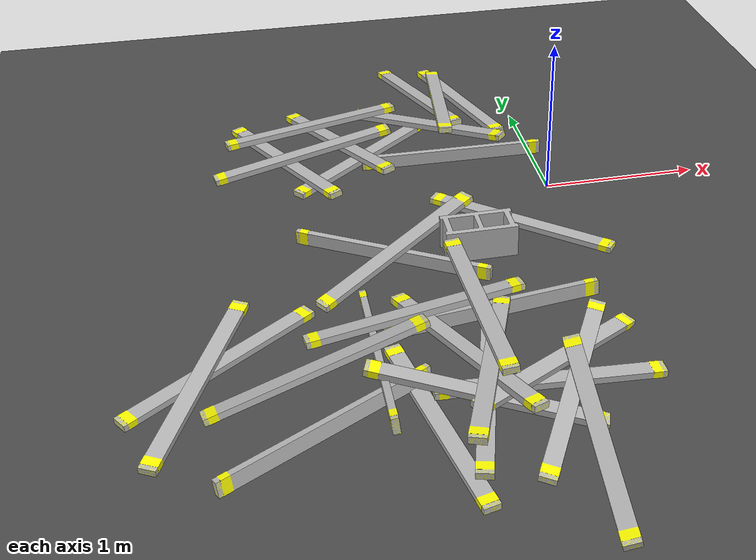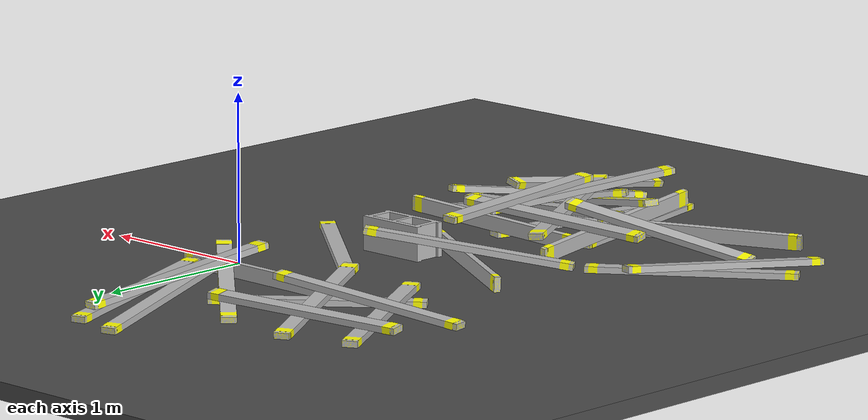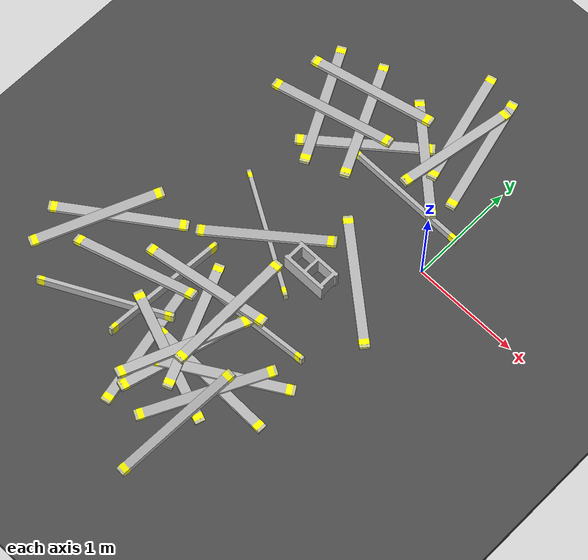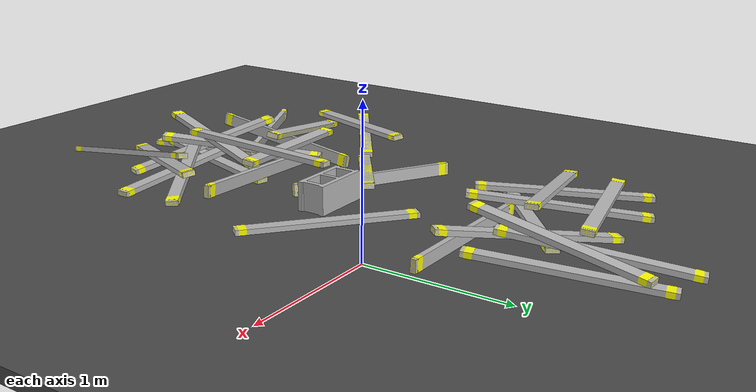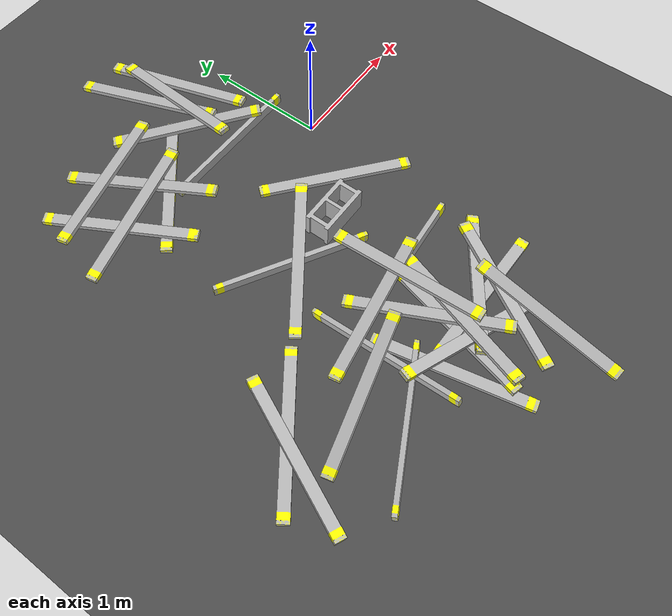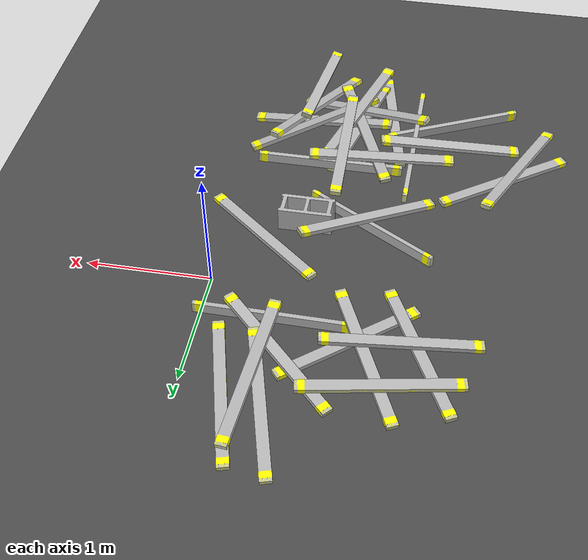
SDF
<sdf version="1.6">
 <world name="default">
  <model name="ground_plane">
   <static>1</static>
   <link name="link">
    <collision name="collision">
     <geometry><plane><normal>0 0 1</normal><size>100 100</size></plane></geometry>
     <surface><friction><ode><mu>100</mu><mu2>50</mu2></ode></friction></surface>
    </collision>
    <visual name="visual">
     <cast_shadows>0</cast_shadows>
     <geometry><plane><normal>0 0 1</normal><size>100 100</size></plane></geometry>
     <material>
      <script><uri>file://media/materials/scripts/gazebo.material</uri><name>Gazebo/Grey</name></script>
     </material>
    </visual>
   </link>
  </model>
  <model name="asphalt_plane">
   <static>1</static>
   <link name="link">
    <collision name="collision"><geometry><box><size>20 20 0.1</size></box></geometry></collision>
    <visual name="visual">
     <cast_shadows>0</cast_shadows>
     <geometry><box><size>20 20 0.1</size></box></geometry>
     <material>
      <script>
       <uri>model://asphalt_plane/materials/scripts</uri>
       <uri>model://asphalt_plane/materials/textures</uri>
       <name>vrc/asphalt</name>
      </script>
     </material>
    </visual>
   </link>
   <pose>0.013797 -0.037077 0 0 -0 0</pose>
  </model>
  <model name="lumber_2x4x48_clone">
   <link name="link">
    <inertial>
     <mass>1.4111</mass>
     <inertia><ixx>0.0011</ixx><ixy>0</ixy><ixz>0</ixz><iyy>0.1771</iyy><iyz>0</iyz><izz>0.1763</izz></inertia>
    </inertial>
    <collision name="collision">
     <geometry><box><size>1.2192 0.038 0.0888</size></box></geometry>
     <surface>
      <bounce><restitution_coefficient>0.01</restitution_coefficient><threshold>5</threshold></bounce>
      <friction><ode><mu>5</mu><mu2>5</mu2></ode></friction>
      <contact>
       <ode>
        <soft_cfm>0.001</soft_cfm>
        <kp>10000</kp>
        <kd>1000</kd>
        <max_vel>0.01</max_vel>
        <min_depth>0.001</min_depth>
       </ode>
      </contact>
     </surface>
    </collision>
    <visual name="visual">
     <geometry><mesh><uri>model://drc_practice_2x4/meshes/2x4x48.dae</uri><scale>1 1 1</scale></mesh></geometry>
    </visual>
   </link>
   <pose>-0.564844 0.385087 0.092446 -0.014603 -0.000898 -0.013555</pose>
  </model>
  <model name="lumber_2x4x48_clone_3_clone">
   <link name="link">
    <inertial>
     <mass>1.4111</mass>
     <inertia><ixx>0.0011</ixx><ixy>0</ixy><ixz>0</ixz><iyy>0.1771</iyy><iyz>0</iyz><izz>0.1763</izz></inertia>
    </inertial>
    <collision name="collision">
     <geometry><box><size>1.2192 0.038 0.0888</size></box></geometry>
     <surface>
      <bounce><restitution_coefficient>0.01</restitution_coefficient><threshold>5</threshold></bounce>
      <friction><ode><mu>5</mu><mu2>5</mu2></ode></friction>
      <contact>
       <ode>
        <soft_cfm>0.001</soft_cfm>
        <kp>10000</kp>
        <kd>1000</kd>
        <max_vel>0.01</max_vel>
        <min_depth>0.001</min_depth>
       </ode>
      </contact>
     </surface>
    </collision>
    <visual name="visual">
     <geometry><mesh><uri>model://drc_practice_2x4/meshes/2x4x48.dae</uri><scale>1 1 1</scale></mesh></geometry>
    </visual>
   </link>
   <pose>-0.674077 0.751411 0.144054 1.58243 -0.126257 -0.74308</pose>
  </model>
  <model name="lumber_2x4x48_clone_3_clone_0_clone_1">
   <link name="link">
    <inertial>
     <mass>1.4111</mass>
     <inertia><ixx>0.0011</ixx><ixy>0</ixy><ixz>0</ixz><iyy>0.1771</iyy><iyz>0</iyz><izz>0.1763</izz></inertia>
    </inertial>
    <collision name="collision">
     <geometry><box><size>1.2192 0.038 0.0888</size></box></geometry>
     <surface>
      <bounce><restitution_coefficient>0.01</restitution_coefficient><threshold>5</threshold></bounce>
      <friction><ode><mu>5</mu><mu2>5</mu2></ode></friction>
      <contact>
       <ode>
        <soft_cfm>0.001</soft_cfm>
        <kp>10000</kp>
        <kd>1000</kd>
        <max_vel>0.01</max_vel>
        <min_depth>0.001</min_depth>
       </ode>
      </contact>
     </surface>
    </collision>
    <visual name="visual">
     <geometry><mesh><uri>model://drc_practice_2x4/meshes/2x4x48.dae</uri><scale>1 1 1</scale></mesh></geometry>
    </visual>
   </link>
   <pose>-0.536621 0.990716 0.198915 1.59843 0.135989 1.45668</pose>
  </model>
  <model name="lumber_2x4x48_clone_1_clone">
   <link name="link">
    <inertial>
     <mass>1.4111</mass>
     <inertia><ixx>0.0011</ixx><ixy>0</ixy><ixz>0</ixz><iyy>0.1771</iyy><iyz>0</iyz><izz>0.1763</izz></inertia>
    </inertial>
    <collision name="collision">
     <geometry><box><size>1.2192 0.038 0.0888</size></box></geometry>
     <surface>
      <bounce><restitution_coefficient>0.01</restitution_coefficient><threshold>5</threshold></bounce>
      <friction><ode><mu>5</mu><mu2>5</mu2></ode></friction>
      <contact>
       <ode>
        <soft_cfm>0.001</soft_cfm>
        <kp>10000</kp>
        <kd>1000</kd>
        <max_vel>0.01</max_vel>
        <min_depth>0.001</min_depth>
       </ode>
      </contact>
     </surface>
    </collision>
    <visual name="visual">
     <geometry><mesh><uri>model://drc_practice_2x4/meshes/2x4x48.dae</uri><scale>1 1 1</scale></mesh></geometry>
    </visual>
   </link>
   <pose>-0.551399 -1.96521 0.104119 -1.58274 0.059663 -0.000419</pose>
  </model>
  <model name="lumber_2x4x48_clone_3_clone_0_clone_0_clone">
   <link name="link">
    <inertial>
     <mass>1.4111</mass>
     <inertia><ixx>0.0011</ixx><ixy>0</ixy><ixz>0</ixz><iyy>0.1771</iyy><iyz>0</iyz><izz>0.1763</izz></inertia>
    </inertial>
    <collision name="collision">
     <geometry><box><size>1.2192 0.038 0.0888</size></box></geometry>
     <surface>
      <bounce><restitution_coefficient>0.01</restitution_coefficient><threshold>5</threshold></bounce>
      <friction><ode><mu>5</mu><mu2>5</mu2></ode></friction>
      <contact>
       <ode>
        <soft_cfm>0.001</soft_cfm>
        <kp>10000</kp>
        <kd>1000</kd>
        <max_vel>0.01</max_vel>
        <min_depth>0.001</min_depth>
       </ode>
      </contact>
     </surface>
    </collision>
    <visual name="visual">
     <geometry><mesh><uri>model://drc_practice_2x4/meshes/2x4x48.dae</uri><scale>1 1 1</scale></mesh></geometry>
    </visual>
   </link>
   <pose>-0.491095 -1.8733 0.143896 1.68395 0.124145 0.588669</pose>
  </model>
  <model name="lumber_2x4x48_clone_3_clone_0_clone_0_clone_0_clone">
   <link name="link">
    <inertial>
     <mass>1.4111</mass>
     <inertia><ixx>0.0011</ixx><ixy>0</ixy><ixz>0</ixz><iyy>0.1771</iyy><iyz>0</iyz><izz>0.1763</izz></inertia>
    </inertial>
    <collision name="collision">
     <geometry><box><size>1.2192 0.038 0.0888</size></box></geometry>
     <surface>
      <bounce><restitution_coefficient>0.01</restitution_coefficient><threshold>5</threshold></bounce>
      <friction><ode><mu>5</mu><mu2>5</mu2></ode></friction>
      <contact>
       <ode>
        <soft_cfm>0.001</soft_cfm>
        <kp>10000</kp>
        <kd>1000</kd>
        <max_vel>0.01</max_vel>
        <min_depth>0.001</min_depth>
       </ode>
      </contact>
     </surface>
    </collision>
    <visual name="visual">
     <geometry><mesh><uri>model://drc_practice_2x4/meshes/2x4x48.dae</uri><scale>1 1 1</scale></mesh></geometry>
    </visual>
   </link>
   <pose>-0.9154 -2.08029 0.176265 1.59063 -0.182362 2.80756</pose>
  </model>
  <model name="lumber_2x4x48_clone_0_clone">
   <link name="link">
    <inertial>
     <mass>1.4111</mass>
     <inertia><ixx>0.0011</ixx><ixy>0</ixy><ixz>0</ixz><iyy>0.1771</iyy><iyz>0</iyz><izz>0.1763</izz></inertia>
    </inertial>
    <collision name="collision">
     <geometry><box><size>1.2192 0.038 0.0888</size></box></geometry>
     <surface>
      <bounce><restitution_coefficient>0.01</restitution_coefficient><threshold>5</threshold></bounce>
      <friction><ode><mu>5</mu><mu2>5</mu2></ode></friction>
      <contact>
       <ode>
        <soft_cfm>0.001</soft_cfm>
        <kp>10000</kp>
        <kd>1000</kd>
        <max_vel>0.01</max_vel>
        <min_depth>0.001</min_depth>
       </ode>
      </contact>
     </surface>
    </collision>
    <visual name="visual">
     <geometry><mesh><uri>model://drc_practice_2x4/meshes/2x4x48.dae</uri><scale>1 1 1</scale></mesh></geometry>
    </visual>
   </link>
   <pose>-0.710457 -1.3682 0.129535 -0.070083 -0.054685 0.065202</pose>
  </model>
  <model name="lumber_2x4x48_clone_3_clone_0_clone_1_clone">
   <link name="link">
    <inertial>
     <mass>1.4111</mass>
     <inertia><ixx>0.0011</ixx><ixy>0</ixy><ixz>0</ixz><iyy>0.1771</iyy><iyz>0</iyz><izz>0.1763</izz></inertia>
    </inertial>
    <collision name="collision">
     <geometry><box><size>1.2192 0.038 0.0888</size></box></geometry>
     <surface>
      <bounce><restitution_coefficient>0.01</restitution_coefficient><threshold>5</threshold></bounce>
      <friction><ode><mu>5</mu><mu2>5</mu2></ode></friction>
      <contact>
       <ode>
        <soft_cfm>0.001</soft_cfm>
        <kp>10000</kp>
        <kd>1000</kd>
        <max_vel>0.01</max_vel>
        <min_depth>0.001</min_depth>
       </ode>
      </contact>
     </surface>
    </collision>
    <visual name="visual">
     <geometry><mesh><uri>model://drc_practice_2x4/meshes/2x4x48.dae</uri><scale>1 1 1</scale></mesh></geometry>
    </visual>
   </link>
   <pose>-0.878822 -1.94492 0.085398 1.56353 0.03198 1.3131</pose>
  </model>
  <model name="lumber_2x4x48_clone_3_clone_0_clone_1_clone_clone_1">
   <link name="link">
    <inertial>
     <mass>1.4111</mass>
     <inertia><ixx>0.0011</ixx><ixy>0</ixy><ixz>0</ixz><iyy>0.1771</iyy><iyz>0</iyz><izz>0.1763</izz></inertia>
    </inertial>
    <collision name="collision">
     <geometry><box><size>1.2192 0.038 0.0888</size></box></geometry>
     <surface>
      <bounce><restitution_coefficient>0.01</restitution_coefficient><threshold>5</threshold></bounce>
      <friction><ode><mu>5</mu><mu2>5</mu2></ode></friction>
      <contact>
       <ode>
        <soft_cfm>0.001</soft_cfm>
        <kp>10000</kp>
        <kd>1000</kd>
        <max_vel>0.01</max_vel>
        <min_depth>0.001</min_depth>
       </ode>
      </contact>
     </surface>
    </collision>
    <visual name="visual">
     <geometry><mesh><uri>model://drc_practice_2x4/meshes/2x4x48.dae</uri><scale>1 1 1</scale></mesh></geometry>
    </visual>
   </link>
   <pose>-1.38732 -1.67393 0.170197 3.0514 0.126034 1.55885</pose>
  </model>
  <model name="lumber_2x4x48_clone_3_clone_0_clone_1_clone_clone_2">
   <link name="link">
    <inertial>
     <mass>1.4111</mass>
     <inertia><ixx>0.0011</ixx><ixy>0</ixy><ixz>0</ixz><iyy>0.1771</iyy><iyz>0</iyz><izz>0.1763</izz></inertia>
    </inertial>
    <collision name="collision">
     <geometry><box><size>1.2192 0.038 0.0888</size></box></geometry>
     <surface>
      <bounce><restitution_coefficient>0.01</restitution_coefficient><threshold>5</threshold></bounce>
      <friction><ode><mu>5</mu><mu2>5</mu2></ode></friction>
      <contact>
       <ode>
        <soft_cfm>0.001</soft_cfm>
        <kp>10000</kp>
        <kd>1000</kd>
        <max_vel>0.01</max_vel>
        <min_depth>0.001</min_depth>
       </ode>
      </contact>
     </surface>
    </collision>
    <visual name="visual">
     <geometry><mesh><uri>model://drc_practice_2x4/meshes/2x4x48.dae</uri><scale>1 1 1</scale></mesh></geometry>
    </visual>
   </link>
   <pose>-1.69019 -2.06852 0.107609 -0.127922 -0.022376 0.469954</pose>
  </model>
  <model name="lumber_2x4x48_clone_3_clone_0_clone_clone">
   <link name="link">
    <inertial>
     <mass>1.4111</mass>
     <inertia><ixx>0.0011</ixx><ixy>0</ixy><ixz>0</ixz><iyy>0.1771</iyy><iyz>0</iyz><izz>0.1763</izz></inertia>
    </inertial>
    <collision name="collision">
     <geometry><box><size>1.2192 0.038 0.0888</size></box></geometry>
     <surface>
      <bounce><restitution_coefficient>0.01</restitution_coefficient><threshold>5</threshold></bounce>
      <friction><ode><mu>5</mu><mu2>5</mu2></ode></friction>
      <contact>
       <ode>
        <soft_cfm>0.001</soft_cfm>
        <kp>10000</kp>
        <kd>1000</kd>
        <max_vel>0.01</max_vel>
        <min_depth>0.001</min_depth>
       </ode>
      </contact>
     </surface>
    </collision>
    <visual name="visual">
     <geometry><mesh><uri>model://drc_practice_2x4/meshes/2x4x48.dae</uri><scale>1 1 1</scale></mesh></geometry>
    </visual>
   </link>
   <pose>-2.18032 -1.45176 0.067309 1.57859 -0.000151 0.618251</pose>
  </model>
  <model name="lumber_2x4x48_clone_3_clone_0_clone_1_clone_clone_4">
   <link name="link">
    <inertial>
     <mass>1.4111</mass>
     <inertia><ixx>0.0011</ixx><ixy>0</ixy><ixz>0</ixz><iyy>0.1771</iyy><iyz>0</iyz><izz>0.1763</izz></inertia>
    </inertial>
    <collision name="collision">
     <geometry><box><size>1.2192 0.038 0.0888</size></box></geometry>
     <surface>
      <bounce><restitution_coefficient>0.01</restitution_coefficient><threshold>5</threshold></bounce>
      <friction><ode><mu>5</mu><mu2>5</mu2></ode></friction>
      <contact>
       <ode>
        <soft_cfm>0.001</soft_cfm>
        <kp>10000</kp>
        <kd>1000</kd>
        <max_vel>0.01</max_vel>
        <min_depth>0.001</min_depth>
       </ode>
      </contact>
     </surface>
    </collision>
    <visual name="visual">
     <geometry><mesh><uri>model://drc_practice_2x4/meshes/2x4x48.dae</uri><scale>1 1 1</scale></mesh></geometry>
    </visual>
   </link>
   <pose>-1.15883 0.514226 0.067235 1.56227 -0.000503 0.690635</pose>
  </model>
  <model name="lumber_2x4x48_clone_3_clone_0_clone_clone_0_clone_0">
   <link name="link">
    <inertial>
     <mass>1.4111</mass>
     <inertia><ixx>0.0011</ixx><ixy>0</ixy><ixz>0</ixz><iyy>0.1771</iyy><iyz>0</iyz><izz>0.1763</izz></inertia>
    </inertial>
    <collision name="collision">
     <geometry><box><size>1.2192 0.038 0.0888</size></box></geometry>
     <surface>
      <bounce><restitution_coefficient>0.01</restitution_coefficient><threshold>5</threshold></bounce>
      <friction><ode><mu>5</mu><mu2>5</mu2></ode></friction>
      <contact>
       <ode>
        <soft_cfm>0.001</soft_cfm>
        <kp>10000</kp>
        <kd>1000</kd>
        <max_vel>0.01</max_vel>
        <min_depth>0.001</min_depth>
       </ode>
      </contact>
     </surface>
    </collision>
    <visual name="visual">
     <geometry><mesh><uri>model://drc_practice_2x4/meshes/2x4x48.dae</uri><scale>1 1 1</scale></mesh></geometry>
    </visual>
   </link>
   <pose>-0.9562 -1.74736 0.203667 -1.65018 -0.07961 -1.14269</pose>
  </model>
  <model name="lumber_2x4x48_clone_3_clone_0_clone_clone_0_clone_0_clone_0">
   <link name="link">
    <inertial>
     <mass>1.4111</mass>
     <inertia><ixx>0.0011</ixx><ixy>0</ixy><ixz>0</ixz><iyy>0.1771</iyy><iyz>0</iyz><izz>0.1763</izz></inertia>
    </inertial>
    <collision name="collision">
     <geometry><box><size>1.2192 0.038 0.0888</size></box></geometry>
     <surface>
      <bounce><restitution_coefficient>0.01</restitution_coefficient><threshold>5</threshold></bounce>
      <friction><ode><mu>5</mu><mu2>5</mu2></ode></friction>
      <contact>
       <ode>
        <soft_cfm>0.001</soft_cfm>
        <kp>10000</kp>
        <kd>1000</kd>
        <max_vel>0.01</max_vel>
        <min_depth>0.001</min_depth>
       </ode>
      </contact>
     </surface>
    </collision>
    <visual name="visual">
     <geometry><mesh><uri>model://drc_practice_2x4/meshes/2x4x48.dae</uri><scale>1 1 1</scale></mesh></geometry>
    </visual>
   </link>
   <pose>-0.814449 -1.47296 0.278991 -1.5112 -0.044955 -1.54025</pose>
  </model>
  <model name="lumber_2x4x48_clone_3_clone_0_clone_clone_0_clone_0_clone_2">
   <link name="link">
    <inertial>
     <mass>1.4111</mass>
     <inertia><ixx>0.0011</ixx><ixy>0</ixy><ixz>0</ixz><iyy>0.1771</iyy><iyz>0</iyz><izz>0.1763</izz></inertia>
    </inertial>
    <collision name="collision">
     <geometry><box><size>1.2192 0.038 0.0888</size></box></geometry>
     <surface>
      <bounce><restitution_coefficient>0.01</restitution_coefficient><threshold>5</threshold></bounce>
      <friction><ode><mu>5</mu><mu2>5</mu2></ode></friction>
      <contact>
       <ode>
        <soft_cfm>0.001</soft_cfm>
        <kp>10000</kp>
        <kd>1000</kd>
        <max_vel>0.01</max_vel>
        <min_depth>0.001</min_depth>
       </ode>
      </contact>
     </surface>
    </collision>
    <visual name="visual">
     <geometry><mesh><uri>model://drc_practice_2x4/meshes/2x4x48.dae</uri><scale>1 1 1</scale></mesh></geometry>
    </visual>
   </link>
   <pose>-1.16407 -2.10287 0.065749 -1.54798 -0.000855 -1.35803</pose>
  </model>
  <model name="lumber_2x4x48_clone_3_clone_0_clone_clone_0_clone_0_clone_3">
   <link name="link">
    <inertial>
     <mass>1.4111</mass>
     <inertia><ixx>0.0011</ixx><ixy>0</ixy><ixz>0</ixz><iyy>0.1771</iyy><iyz>0</iyz><izz>0.1763</izz></inertia>
    </inertial>
    <collision name="collision">
     <geometry><box><size>1.2192 0.038 0.0888</size></box></geometry>
     <surface>
      <bounce><restitution_coefficient>0.01</restitution_coefficient><threshold>5</threshold></bounce>
      <friction><ode><mu>5</mu><mu2>5</mu2></ode></friction>
      <contact>
       <ode>
        <soft_cfm>0.001</soft_cfm>
        <kp>10000</kp>
        <kd>1000</kd>
        <max_vel>0.01</max_vel>
        <min_depth>0.001</min_depth>
       </ode>
      </contact>
     </surface>
    </collision>
    <visual name="visual">
     <geometry><mesh><uri>model://drc_practice_2x4/meshes/2x4x48.dae</uri><scale>1 1 1</scale></mesh></geometry>
    </visual>
   </link>
   <pose>-0.357372 1.13559 0.106775 -1.58406 -0.063668 -1.31004</pose>
  </model>
  <model name="lumber_2x4x48_clone_3_clone_0_clone_clone_0_clone_0_clone_6">
   <link name="link">
    <inertial>
     <mass>1.4111</mass>
     <inertia><ixx>0.0011</ixx><ixy>0</ixy><ixz>0</ixz><iyy>0.1771</iyy><iyz>0</iyz><izz>0.1763</izz></inertia>
    </inertial>
    <collision name="collision">
     <geometry><box><size>1.2192 0.038 0.0888</size></box></geometry>
     <surface>
      <bounce><restitution_coefficient>0.01</restitution_coefficient><threshold>5</threshold></bounce>
      <friction><ode><mu>5</mu><mu2>5</mu2></ode></friction>
      <contact>
       <ode>
        <soft_cfm>0.001</soft_cfm>
        <kp>10000</kp>
        <kd>1000</kd>
        <max_vel>0.01</max_vel>
        <min_depth>0.001</min_depth>
       </ode>
      </contact>
     </surface>
    </collision>
    <visual name="visual">
     <geometry><mesh><uri>model://drc_practice_2x4/meshes/2x4x48.dae</uri><scale>1 1 1</scale></mesh></geometry>
    </visual>
   </link>
   <pose>-1.68194 0.538962 0.0903 -1.56155 -0.037253 -1.08006</pose>
  </model>
  <model name="lumber_2x4x48_clone_3_clone_0_clone_clone_0_clone_0_clone_7">
   <link name="link">
    <inertial>
     <mass>1.4111</mass>
     <inertia><ixx>0.0011</ixx><ixy>0</ixy><ixz>0</ixz><iyy>0.1771</iyy><iyz>0</iyz><izz>0.1763</izz></inertia>
    </inertial>
    <collision name="collision">
     <geometry><box><size>1.2192 0.038 0.0888</size></box></geometry>
     <surface>
      <bounce><restitution_coefficient>0.01</restitution_coefficient><threshold>5</threshold></bounce>
      <friction><ode><mu>5</mu><mu2>5</mu2></ode></friction>
      <contact>
       <ode>
        <soft_cfm>0.001</soft_cfm>
        <kp>10000</kp>
        <kd>1000</kd>
        <max_vel>0.01</max_vel>
        <min_depth>0.001</min_depth>
       </ode>
      </contact>
     </surface>
    </collision>
    <visual name="visual">
     <geometry><mesh><uri>model://drc_practice_2x4/meshes/2x4x48.dae</uri><scale>1 1 1</scale></mesh></geometry>
    </visual>
   </link>
   <pose>-1.3056 0.664728 0.124248 -1.55753 -0.093838 -1.10502</pose>
  </model>
  <model name="lumber_2x4x48_clone_3_clone_0_clone_clone_0_clone_0_clone_0_clone">
   <link name="link">
    <inertial>
     <mass>1.4111</mass>
     <inertia><ixx>0.0011</ixx><ixy>0</ixy><ixz>0</ixz><iyy>0.1771</iyy><iyz>0</iyz><izz>0.1763</izz></inertia>
    </inertial>
    <collision name="collision">
     <geometry><box><size>1.2192 0.038 0.0888</size></box></geometry>
     <surface>
      <bounce><restitution_coefficient>0.01</restitution_coefficient><threshold>5</threshold></bounce>
      <friction><ode><mu>5</mu><mu2>5</mu2></ode></friction>
      <contact>
       <ode>
        <soft_cfm>0.001</soft_cfm>
        <kp>10000</kp>
        <kd>1000</kd>
        <max_vel>0.01</max_vel>
        <min_depth>0.001</min_depth>
       </ode>
      </contact>
     </surface>
    </collision>
    <visual name="visual">
     <geometry><mesh><uri>model://drc_practice_2x4/meshes/2x4x48.dae</uri><scale>1 1 1</scale></mesh></geometry>
    </visual>
   </link>
   <pose>-1.15275 -0.691676 0.093036 0.045143 -0.000124 -0.530444</pose>
  </model>
  <model name="lumber_2x4x48_clone_3_clone_0_clone_clone_0_clone_0_clone_9">
   <link name="link">
    <inertial>
     <mass>1.4111</mass>
     <inertia><ixx>0.0011</ixx><ixy>0</ixy><ixz>0</ixz><iyy>0.1771</iyy><iyz>0</iyz><izz>0.1763</izz></inertia>
    </inertial>
    <collision name="collision">
     <geometry><box><size>1.2192 0.038 0.0888</size></box></geometry>
     <surface>
      <bounce><restitution_coefficient>0.01</restitution_coefficient><threshold>5</threshold></bounce>
      <friction><ode><mu>5</mu><mu2>5</mu2></ode></friction>
      <contact>
       <ode>
        <soft_cfm>0.001</soft_cfm>
        <kp>10000</kp>
        <kd>1000</kd>
        <max_vel>0.01</max_vel>
        <min_depth>0.001</min_depth>
       </ode>
      </contact>
     </surface>
    </collision>
    <visual name="visual">
     <geometry><mesh><uri>model://drc_practice_2x4/meshes/2x4x48.dae</uri><scale>1 1 1</scale></mesh></geometry>
    </visual>
   </link>
   <pose>-0.650271 1.19758 0.13768 -1.58002 -0.11587 -1.29308</pose>
  </model>
  <model name="lumber_2x4x48_clone_3_clone_0_clone_clone_0_clone_0_clone_11_clone_0">
   <link name="link">
    <inertial>
     <mass>1.4111</mass>
     <inertia><ixx>0.0011</ixx><ixy>0</ixy><ixz>0</ixz><iyy>0.1771</iyy><iyz>0</iyz><izz>0.1763</izz></inertia>
    </inertial>
    <collision name="collision">
     <geometry><box><size>1.2192 0.038 0.0888</size></box></geometry>
     <surface>
      <bounce><restitution_coefficient>0.01</restitution_coefficient><threshold>5</threshold></bounce>
      <friction><ode><mu>5</mu><mu2>5</mu2></ode></friction>
      <contact>
       <ode>
        <soft_cfm>0.001</soft_cfm>
        <kp>10000</kp>
        <kd>1000</kd>
        <max_vel>0.01</max_vel>
        <min_depth>0.001</min_depth>
       </ode>
      </contact>
     </surface>
    </collision>
    <visual name="visual">
     <geometry><mesh><uri>model://drc_practice_2x4/meshes/2x4x48.dae</uri><scale>1 1 1</scale></mesh></geometry>
    </visual>
   </link>
   <pose>-0.864387 -1.9492 0.257824 1.57847 -0.102712 -1.91162</pose>
  </model>
  <model name="lumber_2x4x48_clone_3_clone_0_clone_clone_0_clone_0_clone_11_clone_3">
   <link name="link">
    <inertial>
     <mass>1.4111</mass>
     <inertia><ixx>0.0011</ixx><ixy>0</ixy><ixz>0</ixz><iyy>0.1771</iyy><iyz>0</iyz><izz>0.1763</izz></inertia>
    </inertial>
    <collision name="collision">
     <geometry><box><size>1.2192 0.038 0.0888</size></box></geometry>
     <surface>
      <bounce><restitution_coefficient>0.01</restitution_coefficient><threshold>5</threshold></bounce>
      <friction><ode><mu>5</mu><mu2>5</mu2></ode></friction>
      <contact>
       <ode>
        <soft_cfm>0.001</soft_cfm>
        <kp>10000</kp>
        <kd>1000</kd>
        <max_vel>0.01</max_vel>
        <min_depth>0.001</min_depth>
       </ode>
      </contact>
     </surface>
    </collision>
    <visual name="visual">
     <geometry><mesh><uri>model://drc_practice_2x4/meshes/2x4x48.dae</uri><scale>1 1 1</scale></mesh></geometry>
    </visual>
   </link>
   <pose>-0.459548 -2.4328 0.162297 -1.33539 0.139766 -1.64123</pose>
  </model>
  <model name="lumber_2x4x48_clone_3_clone_0_clone_clone_0_clone_0_clone_11_clone_4">
   <link name="link">
    <inertial>
     <mass>1.4111</mass>
     <inertia><ixx>0.0011</ixx><ixy>0</ixy><ixz>0</ixz><iyy>0.1771</iyy><iyz>0</iyz><izz>0.1763</izz></inertia>
    </inertial>
    <collision name="collision">
     <geometry><box><size>1.2192 0.038 0.0888</size></box></geometry>
     <surface>
      <bounce><restitution_coefficient>0.01</restitution_coefficient><threshold>5</threshold></bounce>
      <friction><ode><mu>5</mu><mu2>5</mu2></ode></friction>
      <contact>
       <ode>
        <soft_cfm>0.001</soft_cfm>
        <kp>10000</kp>
        <kd>1000</kd>
        <max_vel>0.01</max_vel>
        <min_depth>0.001</min_depth>
       </ode>
      </contact>
     </surface>
    </collision>
    <visual name="visual">
     <geometry><mesh><uri>model://drc_practice_2x4/meshes/2x4x48.dae</uri><scale>1 1 1</scale></mesh></geometry>
    </visual>
   </link>
   <pose>-0.472753 -2.08597 0.163673 -1.69109 0.099317 -2.06924</pose>
  </model>
  <model name="lumber_2x4x48_clone_3_clone_0_clone_clone_0_clone_0_clone_11_clone_14_clone_clone_3">
   <link name="link">
    <inertial>
     <mass>1.4111</mass>
     <inertia><ixx>0.0011</ixx><ixy>0</ixy><ixz>0</ixz><iyy>0.1771</iyy><iyz>0</iyz><izz>0.1763</izz></inertia>
    </inertial>
    <collision name="collision">
     <geometry><box><size>1.2192 0.038 0.0888</size></box></geometry>
     <surface>
      <bounce><restitution_coefficient>0.01</restitution_coefficient><threshold>5</threshold></bounce>
      <friction><ode><mu>5</mu><mu2>5</mu2></ode></friction>
      <contact>
       <ode>
        <soft_cfm>0.001</soft_cfm>
        <kp>10000</kp>
        <kd>1000</kd>
        <max_vel>0.01</max_vel>
        <min_depth>0.001</min_depth>
       </ode>
      </contact>
     </surface>
    </collision>
    <visual name="visual">
     <geometry><mesh><uri>model://drc_practice_2x4/meshes/2x4x48.dae</uri><scale>1 1 1</scale></mesh></geometry>
    </visual>
   </link>
   <pose>-1.55085 0.512558 0.143799 1.57649 0.108251 -2.94985</pose>
  </model>
  <model name="lumber_2x4x48_clone_3_clone_0_clone_clone_0_clone_0_clone_11_clone_14_clone_clone_4">
   <link name="link">
    <inertial>
     <mass>1.4111</mass>
     <inertia><ixx>0.0011</ixx><ixy>0</ixy><ixz>0</ixz><iyy>0.1771</iyy><iyz>0</iyz><izz>0.1763</izz></inertia>
    </inertial>
    <collision name="collision">
     <geometry><box><size>1.2192 0.038 0.0888</size></box></geometry>
     <surface>
      <bounce><restitution_coefficient>0.01</restitution_coefficient><threshold>5</threshold></bounce>
      <friction><ode><mu>5</mu><mu2>5</mu2></ode></friction>
      <contact>
       <ode>
        <soft_cfm>0.001</soft_cfm>
        <kp>10000</kp>
        <kd>1000</kd>
        <max_vel>0.01</max_vel>
        <min_depth>0.001</min_depth>
       </ode>
      </contact>
     </surface>
    </collision>
    <visual name="visual">
     <geometry><mesh><uri>model://drc_practice_2x4/meshes/2x4x48.dae</uri><scale>1 1 1</scale></mesh></geometry>
    </visual>
   </link>
   <pose>-1.69849 -1.71407 0.176331 1.73975 0.168133 -2.90784</pose>
  </model>
  <model name="lumber_2x4x48_clone_3_clone_0_clone_clone_0_clone_0_clone_11_clone_14_clone_clone_5">
   <link name="link">
    <inertial>
     <mass>1.4111</mass>
     <inertia><ixx>0.0011</ixx><ixy>0</ixy><ixz>0</ixz><iyy>0.1771</iyy><iyz>0</iyz><izz>0.1763</izz></inertia>
    </inertial>
    <collision name="collision">
     <geometry><box><size>1.2192 0.038 0.0888</size></box></geometry>
     <surface>
      <bounce><restitution_coefficient>0.01</restitution_coefficient><threshold>5</threshold></bounce>
      <friction><ode><mu>5</mu><mu2>5</mu2></ode></friction>
      <contact>
       <ode>
        <soft_cfm>0.001</soft_cfm>
        <kp>10000</kp>
        <kd>1000</kd>
        <max_vel>0.01</max_vel>
        <min_depth>0.001</min_depth>
       </ode>
      </contact>
     </surface>
    </collision>
    <visual name="visual">
     <geometry><mesh><uri>model://drc_practice_2x4/meshes/2x4x48.dae</uri><scale>1 1 1</scale></mesh></geometry>
    </visual>
   </link>
   <pose>-1.14028 -1.42094 0.217695 1.70665 0.054471 -2.9944</pose>
  </model>
  <model name="lumber_2x4x48_clone_3_clone_0_clone_clone_0_clone_0_clone_11_clone_14_clone_clone_8">
   <link name="link">
    <inertial>
     <mass>1.4111</mass>
     <inertia><ixx>0.0011</ixx><ixy>0</ixy><ixz>0</ixz><iyy>0.1771</iyy><iyz>0</iyz><izz>0.1763</izz></inertia>
    </inertial>
    <collision name="collision">
     <geometry><box><size>1.2192 0.038 0.0888</size></box></geometry>
     <surface>
      <bounce><restitution_coefficient>0.01</restitution_coefficient><threshold>5</threshold></bounce>
      <friction><ode><mu>5</mu><mu2>5</mu2></ode></friction>
      <contact>
       <ode>
        <soft_cfm>0.001</soft_cfm>
        <kp>10000</kp>
        <kd>1000</kd>
        <max_vel>0.01</max_vel>
        <min_depth>0.001</min_depth>
       </ode>
      </contact>
     </surface>
    </collision>
    <visual name="visual">
     <geometry><mesh><uri>model://drc_practice_2x4/meshes/2x4x48.dae</uri><scale>1 1 1</scale></mesh></geometry>
    </visual>
   </link>
   <pose>-1.4557 0.9142 0.133031 1.65814 0.037518 -2.93132</pose>
  </model>
  <model name="lumber_2x4x48_clone_3_clone_0_clone_clone_0_clone_0_clone_11_clone_clone_0">
   <link name="link">
    <inertial>
     <mass>1.4111</mass>
     <inertia><ixx>0.0011</ixx><ixy>0</ixy><ixz>0</ixz><iyy>0.1771</iyy><iyz>0</iyz><izz>0.1763</izz></inertia>
    </inertial>
    <collision name="collision">
     <geometry><box><size>1.2192 0.038 0.0888</size></box></geometry>
     <surface>
      <bounce><restitution_coefficient>0.01</restitution_coefficient><threshold>5</threshold></bounce>
      <friction><ode><mu>5</mu><mu2>5</mu2></ode></friction>
      <contact>
       <ode>
        <soft_cfm>0.001</soft_cfm>
        <kp>10000</kp>
        <kd>1000</kd>
        <max_vel>0.01</max_vel>
        <min_depth>0.001</min_depth>
       </ode>
      </contact>
     </surface>
    </collision>
    <visual name="visual">
     <geometry><mesh><uri>model://drc_practice_2x4/meshes/2x4x48.dae</uri><scale>1 1 1</scale></mesh></geometry>
    </visual>
   </link>
   <pose>-2.29318 -1.59686 0.101837 1.48711 0.049645 -1.9889</pose>
  </model>
  <model name="lumber_2x4x48_clone_3_clone_0_clone_clone_0_clone_0_clone_5_clone">
   <link name="link">
    <inertial>
     <mass>1.4111</mass>
     <inertia><ixx>0.0011</ixx><ixy>0</ixy><ixz>0</ixz><iyy>0.1771</iyy><iyz>0</iyz><izz>0.1763</izz></inertia>
    </inertial>
    <collision name="collision">
     <geometry><box><size>1.2192 0.038 0.0888</size></box></geometry>
     <surface>
      <bounce><restitution_coefficient>0.01</restitution_coefficient><threshold>5</threshold></bounce>
      <friction><ode><mu>5</mu><mu2>5</mu2></ode></friction>
      <contact>
       <ode>
        <soft_cfm>0.001</soft_cfm>
        <kp>10000</kp>
        <kd>1000</kd>
        <max_vel>0.01</max_vel>
        <min_depth>0.001</min_depth>
       </ode>
      </contact>
     </surface>
    </collision>
    <visual name="visual">
     <geometry><mesh><uri>model://drc_practice_2x4/meshes/2x4x48.dae</uri><scale>1 1 1</scale></mesh></geometry>
    </visual>
   </link>
   <pose>-0.315556 -0.476073 0.067655 -1.5708 -0 -0.687839</pose>
  </model>
  <model name="lumber_2x4x48_clone_3_clone_0_clone_clone_0_clone">
   <link name="link">
    <inertial>
     <mass>1.4111</mass>
     <inertia><ixx>0.0011</ixx><ixy>0</ixy><ixz>0</ixz><iyy>0.1771</iyy><iyz>0</iyz><izz>0.1763</izz></inertia>
    </inertial>
    <collision name="collision">
     <geometry><box><size>1.2192 0.038 0.0888</size></box></geometry>
     <surface>
      <bounce><restitution_coefficient>0.01</restitution_coefficient><threshold>5</threshold></bounce>
      <friction><ode><mu>5</mu><mu2>5</mu2></ode></friction>
      <contact>
       <ode>
        <soft_cfm>0.001</soft_cfm>
        <kp>10000</kp>
        <kd>1000</kd>
        <max_vel>0.01</max_vel>
        <min_depth>0.001</min_depth>
       </ode>
      </contact>
     </surface>
    </collision>
    <visual name="visual">
     <geometry><mesh><uri>model://drc_practice_2x4/meshes/2x4x48.dae</uri><scale>1 1 1</scale></mesh></geometry>
    </visual>
   </link>
   <pose>-1.12306 -0.731774 0.15455 1.59853 -0.141015 0.614034</pose>
  </model>
  <model name="cinder_block_0">
   <link name="link">
    <inertial>
     <pose>0 0 0.1016 0 -0 0</pose>
     <mass>5</mass>
     <inertia>
      <ixx>0.028705</ixx>
      <ixy>0</ixy>
      <iyy>0.073708</iyy>
      <ixz>0</ixz>
      <iyz>0</iyz>
      <izz>0.06908</izz>
     </inertia>
    </inertial>
    <visual name="visual">
     <geometry><mesh><uri>model://cinder_block/meshes/cinder_block.dae</uri><scale>1 1 1</scale></mesh></geometry>
    </visual>
    <collision name="left">
     <pose>0 -0.08465 0.1016 0 -0 0</pose>
     <geometry><box><size>0.43495 0.0339 0.2032</size></box></geometry>
     <surface>
      <contact><ode><max_vel>0.1</max_vel><min_depth>0.001</min_depth></ode></contact>
      <friction><ode><mu>1</mu><mu2>1</mu2></ode></friction>
     </surface>
    </collision>
    <collision name="right">
     <pose>0 0.08465 0.1016 0 -0 0</pose>
     <geometry><box><size>0.43495 0.0339 0.2032</size></box></geometry>
     <surface>
      <contact><ode><max_vel>0.1</max_vel><min_depth>0.001</min_depth></ode></contact>
      <friction><ode><mu>1</mu><mu2>1</mu2></ode></friction>
     </surface>
    </collision>
    <collision name="front">
     <pose>0.18625 0 0.1016 0 -0 0</pose>
     <geometry><box><size>0.0339 0.1354 0.203</size></box></geometry>
     <surface>
      <contact><ode><max_vel>0.1</max_vel><min_depth>0.001</min_depth></ode></contact>
      <friction><ode><mu>1</mu><mu2>1</mu2></ode></friction>
     </surface>
    </collision>
    <collision name="middle">
     <pose>0 0 0.1016 0 -0 0</pose>
     <geometry><box><size>0.0339 0.1354 0.203</size></box></geometry>
     <surface>
      <contact><ode><max_vel>0.1</max_vel><min_depth>0.001</min_depth></ode></contact>
      <friction><ode><mu>1</mu><mu2>1</mu2></ode></friction>
     </surface>
    </collision>
    <collision name="back">
     <pose>-0.18625 0 0.1016 0 -0 0</pose>
     <geometry><box><size>0.0339 0.1354 0.203</size></box></geometry>
     <surface>
      <contact><ode><max_vel>0.1</max_vel><min_depth>0.001</min_depth></ode></contact>
      <friction><ode><mu>1</mu><mu2>1</mu2></ode></friction>
     </surface>
    </collision>
   </link>
   <pose>-0.631166 -0.692757 0.049906 1.8e-05 0.000441 0.001754</pose>
  </model>
 </world>
</sdf>
